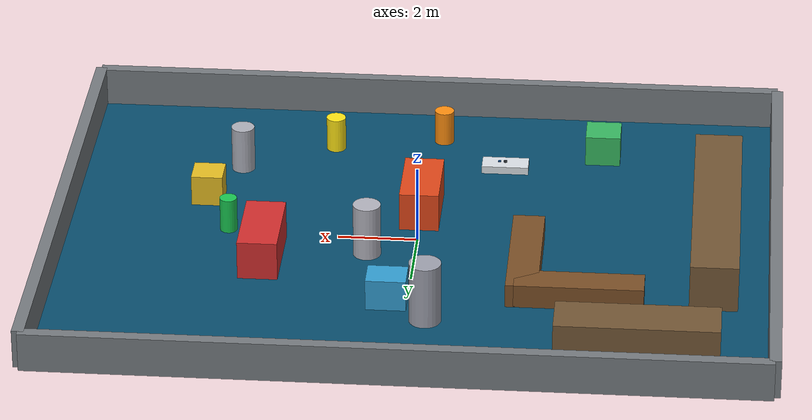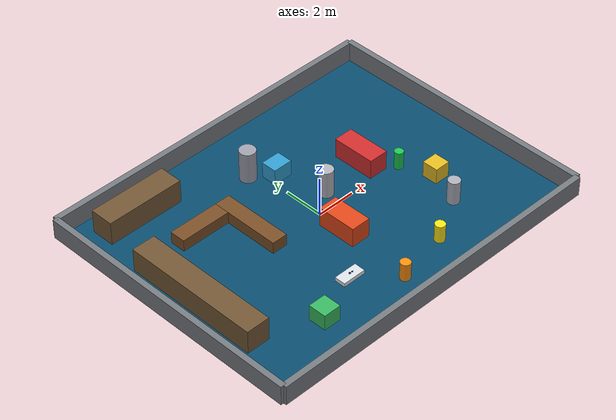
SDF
<?xml version="1.0"?>
<sdf version="1.8">
  <world name="zero_navigation_world">
    <!-- SDF poses and sizes in this world use meters and radians. -->
    <!-- 本 world 内 SDF 位姿和尺寸使用米与弧度。 -->
    <plugin filename="ignition-gazebo-physics-system" name="ignition::gazebo::systems::Physics" />
    <plugin filename="ignition-gazebo-user-commands-system" name="ignition::gazebo::systems::UserCommands" />
    <plugin filename="ignition-gazebo-scene-broadcaster-system" name="ignition::gazebo::systems::SceneBroadcaster" />
    <plugin filename="ignition-gazebo-sensors-system" name="ignition::gazebo::systems::Sensors">
      <render_engine>ogre2</render_engine>
    </plugin>
    <plugin filename="ignition-gazebo-imu-system" name="ignition::gazebo::systems::Imu" />

    <gravity>0 0 -9.81</gravity>
    <magnetic_field>6.0e-6 2.3e-5 -4.2e-5</magnetic_field>
    <atmosphere type="adiabatic" />

    <light name="navigation_sun" type="directional">
      <cast_shadows>true</cast_shadows>
      <pose>0 0 12 0 0 0</pose>
      <diffuse>0.82 0.82 0.78 1</diffuse>
      <specular>0.18 0.18 0.16 1</specular>
      <direction>-0.45 0.20 -0.87</direction>
    </light>

    <model name="water_surface">
      <!-- Bounded water-plane arena used by navigation characterization tests. -->
      <!-- 导航表征测试使用的有限水面场地。 -->
      <static>true</static>
      <pose>0 0 0 0 0 0</pose>
      <link name="water_surface_link">
        <collision name="water_surface_collision">
          <geometry>
            <plane>
              <normal>0 0 1</normal>
              <size>18 14</size>
            </plane>
          </geometry>
        </collision>
        <visual name="water_surface_visual">
          <geometry>
            <plane>
              <normal>0 0 1</normal>
              <size>18 14</size>
            </plane>
          </geometry>
          <material>
            <ambient>0.02 0.16 0.24 1</ambient>
            <diffuse>0.03 0.30 0.43 1</diffuse>
            <specular>0.02 0.05 0.07 1</specular>
          </material>
        </visual>
      </link>
    </model>

    <model name="boundary_west">
      <!-- Static boundaries keep navigation scenarios inside the test arena. -->
      <!-- 静态边界将导航场景限制在测试场地内。 -->
      <static>true</static>
      <pose>-9 0 0.5 0 0 0</pose>
      <link name="boundary_west_link">
        <collision name="boundary_west_collision">
          <geometry><box><size>0.30 14 1.0</size></box></geometry>
        </collision>
        <visual name="boundary_west_visual">
          <geometry><box><size>0.30 14 1.0</size></box></geometry>
          <material>
            <ambient>0.36 0.38 0.40 1</ambient>
            <diffuse>0.46 0.48 0.50 1</diffuse>
          </material>
        </visual>
      </link>
    </model>

    <model name="boundary_east">
      <static>true</static>
      <pose>9 0 0.5 0 0 0</pose>
      <link name="boundary_east_link">
        <collision name="boundary_east_collision">
          <geometry><box><size>0.30 14 1.0</size></box></geometry>
        </collision>
        <visual name="boundary_east_visual">
          <geometry><box><size>0.30 14 1.0</size></box></geometry>
          <material>
            <ambient>0.36 0.38 0.40 1</ambient>
            <diffuse>0.46 0.48 0.50 1</diffuse>
          </material>
        </visual>
      </link>
    </model>

    <model name="boundary_south">
      <static>true</static>
      <pose>0 -7 0.5 0 0 0</pose>
      <link name="boundary_south_link">
        <collision name="boundary_south_collision">
          <geometry><box><size>18 0.30 1.0</size></box></geometry>
        </collision>
        <visual name="boundary_south_visual">
          <geometry><box><size>18 0.30 1.0</size></box></geometry>
          <material>
            <ambient>0.36 0.38 0.40 1</ambient>
            <diffuse>0.46 0.48 0.50 1</diffuse>
          </material>
        </visual>
      </link>
    </model>

    <model name="boundary_north">
      <static>true</static>
      <pose>0 7 0.5 0 0 0</pose>
      <link name="boundary_north_link">
        <collision name="boundary_north_collision">
          <geometry><box><size>18 0.30 1.0</size></box></geometry>
        </collision>
        <visual name="boundary_north_visual">
          <geometry><box><size>18 0.30 1.0</size></box></geometry>
          <material>
            <ambient>0.36 0.38 0.40 1</ambient>
            <diffuse>0.46 0.48 0.50 1</diffuse>
          </material>
        </visual>
      </link>
    </model>

    <model name="shoreline_west_lower">
      <!-- Shoreline blocks create the non-rectangular drivable water area. -->
      <!-- 岸线块用于形成非矩形可航行水域。 -->
      <static>true</static>
      <pose>-7.5 -0.5 0.6 0 0 0</pose>
      <link name="shoreline_west_lower_link">
        <collision name="shoreline_west_lower_collision">
          <geometry><box><size>1.2 7.0 1.2</size></box></geometry>
        </collision>
        <visual name="shoreline_west_lower_visual">
          <geometry><box><size>1.2 7.0 1.2</size></box></geometry>
          <material>
            <ambient>0.33 0.25 0.16 1</ambient>
            <diffuse>0.45 0.34 0.21 1</diffuse>
          </material>
        </visual>
      </link>
    </model>

    <model name="shoreline_northwest">
      <static>true</static>
      <pose>-5.7 5.5 0.6 0 0 0</pose>
      <link name="shoreline_northwest_link">
        <collision name="shoreline_northwest_collision">
          <geometry><box><size>4.0 1.2 1.2</size></box></geometry>
        </collision>
        <visual name="shoreline_northwest_visual">
          <geometry><box><size>4.0 1.2 1.2</size></box></geometry>
          <material>
            <ambient>0.33 0.25 0.16 1</ambient>
            <diffuse>0.45 0.34 0.21 1</diffuse>
          </material>
        </visual>
      </link>
    </model>

    <model name="dock_main">
      <!-- Dock geometry gives navigation tests a fixed near-shore structure. -->
      <!-- 码头几何为导航测试提供固定近岸结构。 -->
      <static>true</static>
      <pose>-4.2 2.8 0.3 0 0 0</pose>
      <link name="dock_main_link">
        <collision name="dock_main_collision">
          <geometry><box><size>3.2 0.8 0.6</size></box></geometry>
        </collision>
        <visual name="dock_main_visual">
          <geometry><box><size>3.2 0.8 0.6</size></box></geometry>
          <material>
            <ambient>0.28 0.18 0.09 1</ambient>
            <diffuse>0.48 0.31 0.15 1</diffuse>
          </material>
        </visual>
      </link>
    </model>

    <model name="dock_finger">
      <static>true</static>
      <pose>-2.8 1.4 0.3 0 0 0</pose>
      <link name="dock_finger_link">
        <collision name="dock_finger_collision">
          <geometry><box><size>0.8 3.6 0.6</size></box></geometry>
        </collision>
        <visual name="dock_finger_visual">
          <geometry><box><size>0.8 3.6 0.6</size></box></geometry>
          <material>
            <ambient>0.28 0.18 0.09 1</ambient>
            <diffuse>0.48 0.31 0.15 1</diffuse>
          </material>
        </visual>
      </link>
    </model>

    <model name="bypass_obstacle_alpha">
      <!-- Bypass obstacles force local avoidance instead of a straight-line route. -->
      <!-- 绕行障碍物迫使局部避障，而不是直线路径。 -->
      <static>true</static>
      <pose>0 -1.5 0.5 0 0 0</pose>
      <link name="bypass_obstacle_alpha_link">
        <collision name="bypass_obstacle_alpha_collision">
          <geometry><box><size>1.0 2.0 1.0</size></box></geometry>
        </collision>
        <visual name="bypass_obstacle_alpha_visual">
          <geometry><box><size>1.0 2.0 1.0</size></box></geometry>
          <material>
            <ambient>0.70 0.20 0.08 1</ambient>
            <diffuse>0.88 0.28 0.10 1</diffuse>
          </material>
        </visual>
      </link>
    </model>

    <model name="bypass_obstacle_beta">
      <static>true</static>
      <pose>3.8 1.2 0.5 0 0 0</pose>
      <link name="bypass_obstacle_beta_link">
        <collision name="bypass_obstacle_beta_collision">
          <geometry><box><size>1.0 2.2 1.0</size></box></geometry>
        </collision>
        <visual name="bypass_obstacle_beta_visual">
          <geometry><box><size>1.0 2.2 1.0</size></box></geometry>
          <material>
            <ambient>0.63 0.12 0.12 1</ambient>
            <diffuse>0.82 0.18 0.18 1</diffuse>
          </material>
        </visual>
      </link>
    </model>

    <model name="box_east">
      <!-- Colored boxes provide simple LiDAR-visible navigation landmarks. -->
      <!-- 彩色方块提供可被 LiDAR 观测的简易导航地标。 -->
      <static>true</static>
      <pose>5.5 -1.8 0.4 0 0 0</pose>
      <link name="box_east_link">
        <collision name="box_east_collision">
          <geometry><box><size>0.8 0.8 0.8</size></box></geometry>
        </collision>
        <visual name="box_east_visual">
          <geometry><box><size>0.8 0.8 0.8</size></box></geometry>
          <material>
            <ambient>0.72 0.58 0.10 1</ambient>
            <diffuse>0.90 0.74 0.14 1</diffuse>
          </material>
        </visual>
      </link>
    </model>

    <model name="box_north">
      <static>true</static>
      <pose>0.5 3.2 0.4 0 0 0</pose>
      <link name="box_north_link">
        <collision name="box_north_collision">
          <geometry><box><size>1.0 0.8 0.8</size></box></geometry>
        </collision>
        <visual name="box_north_visual">
          <geometry><box><size>1.0 0.8 0.8</size></box></geometry>
          <material>
            <ambient>0.16 0.48 0.66 1</ambient>
            <diffuse>0.20 0.62 0.82 1</diffuse>
          </material>
        </visual>
      </link>
    </model>

    <model name="box_southwest">
      <static>true</static>
      <pose>-4.5 -4.8 0.4 0 0 0</pose>
      <link name="box_southwest_link">
        <collision name="box_southwest_collision">
          <geometry><box><size>0.9 0.9 0.8</size></box></geometry>
        </collision>
        <visual name="box_southwest_visual">
          <geometry><box><size>0.9 0.9 0.8</size></box></geometry>
          <material>
            <ambient>0.18 0.58 0.30 1</ambient>
            <diffuse>0.22 0.72 0.38 1</diffuse>
          </material>
        </visual>
      </link>
    </model>

    <model name="column_center">
      <!-- Cylindrical columns diversify obstacle shapes beyond boxes. -->
      <!-- 圆柱障碍物用于补充方块之外的障碍形状。 -->
      <static>true</static>
      <pose>1.2 0.8 0.7 0 0 0</pose>
      <link name="column_center_link">
        <collision name="column_center_collision">
          <geometry>
            <cylinder><radius>0.35</radius><length>1.4</length></cylinder>
          </geometry>
        </collision>
        <visual name="column_center_visual">
          <geometry>
            <cylinder><radius>0.35</radius><length>1.4</length></cylinder>
          </geometry>
          <material>
            <ambient>0.55 0.55 0.58 1</ambient>
            <diffuse>0.70 0.70 0.74 1</diffuse>
          </material>
        </visual>
      </link>
    </model>

    <model name="column_north">
      <static>true</static>
      <pose>-0.5 4.0 0.8 0 0 0</pose>
      <link name="column_north_link">
        <collision name="column_north_collision">
          <geometry>
            <cylinder><radius>0.4</radius><length>1.6</length></cylinder>
          </geometry>
        </collision>
        <visual name="column_north_visual">
          <geometry>
            <cylinder><radius>0.4</radius><length>1.6</length></cylinder>
          </geometry>
          <material>
            <ambient>0.45 0.46 0.50 1</ambient>
            <diffuse>0.62 0.63 0.68 1</diffuse>
          </material>
        </visual>
      </link>
    </model>

    <model name="column_east">
      <static>true</static>
      <pose>4.8 -3.5 0.6 0 0 0</pose>
      <link name="column_east_link">
        <collision name="column_east_collision">
          <geometry>
            <cylinder><radius>0.3</radius><length>1.2</length></cylinder>
          </geometry>
        </collision>
        <visual name="column_east_visual">
          <geometry>
            <cylinder><radius>0.3</radius><length>1.2</length></cylinder>
          </geometry>
          <material>
            <ambient>0.50 0.51 0.54 1</ambient>
            <diffuse>0.68 0.69 0.73 1</diffuse>
          </material>
        </visual>
      </link>
    </model>

    <model name="buoy_amber">
      <!-- Buoys mark small round targets inside the navigation arena. -->
      <!-- 浮标标记导航场地内的小型圆形目标。 -->
      <static>true</static>
      <pose>-0.3 -5.4 0.45 0 0 0</pose>
      <link name="buoy_amber_link">
        <collision name="buoy_amber_collision">
          <geometry>
            <cylinder><radius>0.25</radius><length>0.9</length></cylinder>
          </geometry>
        </collision>
        <visual name="buoy_amber_visual">
          <geometry>
            <cylinder><radius>0.25</radius><length>0.9</length></cylinder>
          </geometry>
          <material>
            <ambient>0.82 0.42 0.04 1</ambient>
            <diffuse>1.0 0.56 0.06 1</diffuse>
          </material>
        </visual>
      </link>
    </model>

    <model name="buoy_yellow">
      <static>true</static>
      <pose>2.5 -4.8 0.45 0 0 0</pose>
      <link name="buoy_yellow_link">
        <collision name="buoy_yellow_collision">
          <geometry>
            <cylinder><radius>0.25</radius><length>0.9</length></cylinder>
          </geometry>
        </collision>
        <visual name="buoy_yellow_visual">
          <geometry>
            <cylinder><radius>0.25</radius><length>0.9</length></cylinder>
          </geometry>
          <material>
            <ambient>0.82 0.72 0.05 1</ambient>
            <diffuse>1.0 0.90 0.08 1</diffuse>
          </material>
        </visual>
      </link>
    </model>

    <model name="buoy_green">
      <static>true</static>
      <pose>4.8 -0.2 0.45 0 0 0</pose>
      <link name="buoy_green_link">
        <collision name="buoy_green_collision">
          <geometry>
            <cylinder><radius>0.22</radius><length>0.9</length></cylinder>
          </geometry>
        </collision>
        <visual name="buoy_green_visual">
          <geometry>
            <cylinder><radius>0.22</radius><length>0.9</length></cylinder>
          </geometry>
          <material>
            <ambient>0.08 0.58 0.24 1</ambient>
            <diffuse>0.10 0.78 0.32 1</diffuse>
          </material>
        </visual>
      </link>
    </model>

    <include>
      <!-- Spawn the packaged Zero USV model with sensors and DiffDrive plugin. -->
      <!-- 生成带传感器和 DiffDrive 插件的本包 Zero USV 模型。 -->
      <uri>model://zero_usv</uri>
      <name>zero_usv</name>
      <pose>-2.0 -3.8 0.18 0 0 0</pose>
    </include>
  </world>
</sdf>

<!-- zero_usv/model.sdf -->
<sdf version="1.8">
  <model name="zero_usv">
    <pose>0 0 0 0 0 0</pose>
    <static>false</static>

    <link name="zero_base_link">
      <inertial>
        <mass>12.0</mass>
        <inertia>
          <ixx>0.82</ixx>
          <ixy>0</ixy>
          <ixz>0</ixz>
          <iyy>1.46</iyy>
          <iyz>0</iyz>
          <izz>2.10</izz>
        </inertia>
      </inertial>
      <collision name="hull_collision">
        <geometry>
          <box>
            <size>1.20 0.55 0.20</size>
          </box>
        </geometry>
      </collision>
      <visual name="hull_visual">
        <geometry>
          <box>
            <size>1.20 0.55 0.20</size>
          </box>
        </geometry>
        <material>
          <ambient>0.86 0.88 0.90 1</ambient>
          <diffuse>0.86 0.88 0.90 1</diffuse>
        </material>
      </visual>
    </link>

    <link name="lidar_link">
      <pose relative_to="zero_base_link">-0.00015 -0.00040397 0.1277 0 0 0</pose>
      <inertial>
        <mass>0.08</mass>
        <inertia>
          <ixx>0.00006</ixx>
          <ixy>0</ixy>
          <ixz>0</ixz>
          <iyy>0.00006</iyy>
          <iyz>0</iyz>
          <izz>0.00008</izz>
        </inertia>
      </inertial>
      <collision name="lidar_collision">
        <geometry>
          <cylinder>
            <radius>0.045</radius>
            <length>0.04</length>
          </cylinder>
        </geometry>
      </collision>
      <visual name="lidar_visual">
        <geometry>
          <cylinder>
            <radius>0.045</radius>
            <length>0.04</length>
          </cylinder>
        </geometry>
        <material>
          <ambient>0.12 0.14 0.16 1</ambient>
          <diffuse>0.12 0.14 0.16 1</diffuse>
        </material>
      </visual>
      <sensor name="zero_lidar" type="gpu_lidar">
        <topic>/scan</topic>
        <gz_frame_id>laser_frame</gz_frame_id>
        <!-- Approximate the real YDLIDAR X2: 360 deg, 0.10-8.0 m, 4-8 Hz, 3K samples/s. -->
        <!-- 近似真实 YDLIDAR X2：360 度、0.10-8.0 m、4-8 Hz、3K samples/s。 -->
        <update_rate>6</update_rate>
        <always_on>true</always_on>
        <visualize>true</visualize>
        <ray>
          <scan>
            <horizontal>
              <samples>500</samples>
              <resolution>1</resolution>
              <min_angle>-3.14159</min_angle>
              <max_angle>3.14159</max_angle>
            </horizontal>
          </scan>
          <range>
            <min>0.10</min>
            <max>8.0</max>
            <resolution>0.01</resolution>
          </range>
          <noise>
            <type>gaussian</type>
            <mean>0.0</mean>
            <stddev>0.01</stddev>
          </noise>
        </ray>
      </sensor>
    </link>

    <link name="imu_link">
      <pose relative_to="zero_base_link">0.15 0 0.13 0 0 0</pose>
      <inertial>
        <mass>0.05</mass>
        <inertia>
          <ixx>0.00002</ixx>
          <ixy>0</ixy>
          <ixz>0</ixz>
          <iyy>0.00002</iyy>
          <iyz>0</iyz>
          <izz>0.00002</izz>
        </inertia>
      </inertial>
      <collision name="imu_collision">
        <geometry>
          <box>
            <size>0.07 0.05 0.03</size>
          </box>
        </geometry>
      </collision>
      <visual name="imu_visual">
        <geometry>
          <box>
            <size>0.07 0.05 0.03</size>
          </box>
        </geometry>
        <material>
          <ambient>0.08 0.30 0.55 1</ambient>
          <diffuse>0.08 0.30 0.55 1</diffuse>
        </material>
      </visual>
      <sensor name="zero_imu" type="imu">
        <topic>/imu</topic>
        <gz_frame_id>imu_link</gz_frame_id>
        <update_rate>100</update_rate>
        <always_on>true</always_on>
      </sensor>
    </link>

    <link name="left_virtual_wheel_link">
      <!-- Virtual wheel links exist only to drive Gazebo DiffDrive for the USV hull. -->
      <!-- 虚拟轮 link 仅用于驱动 USV 船体的 Gazebo DiffDrive。 -->
      <pose relative_to="zero_base_link">0 0.2035 -0.13 0 0 0</pose>
      <inertial>
        <mass>0.02</mass>
        <inertia>
          <ixx>0.000013166666667</ixx>
          <ixy>0</ixy>
          <ixz>0</ixz>
          <iyy>0.000025</iyy>
          <iyz>0</iyz>
          <izz>0.000013166666667</izz>
        </inertia>
      </inertial>
      <collision name="left_virtual_wheel_collision">
        <pose>0 0 0 1.57079632679 0 0</pose>
        <geometry>
          <cylinder>
            <radius>0.05</radius>
            <length>0.02</length>
          </cylinder>
        </geometry>
      </collision>
    </link>

    <link name="right_virtual_wheel_link">
      <pose relative_to="zero_base_link">0 -0.2035 -0.13 0 0 0</pose>
      <inertial>
        <mass>0.02</mass>
        <inertia>
          <ixx>0.000013166666667</ixx>
          <ixy>0</ixy>
          <ixz>0</ixz>
          <iyy>0.000025</iyy>
          <iyz>0</iyz>
          <izz>0.000013166666667</izz>
        </inertia>
      </inertial>
      <collision name="right_virtual_wheel_collision">
        <pose>0 0 0 1.57079632679 0 0</pose>
        <geometry>
          <cylinder>
            <radius>0.05</radius>
            <length>0.02</length>
          </cylinder>
        </geometry>
      </collision>
    </link>

    <joint name="left_virtual_wheel_joint" type="revolute">
      <parent>zero_base_link</parent>
      <child>left_virtual_wheel_link</child>
      <axis>
        <xyz>0 1 0</xyz>
      </axis>
    </joint>

    <joint name="right_virtual_wheel_joint" type="revolute">
      <parent>zero_base_link</parent>
      <child>right_virtual_wheel_link</child>
      <axis>
        <xyz>0 1 0</xyz>
      </axis>
    </joint>

    <joint name="zero_lidar_fixed_joint" type="fixed">
      <parent>zero_base_link</parent>
      <child>lidar_link</child>
    </joint>
    <frame name="laser_frame" attached_to="lidar_link">
      <pose>0 0 0 0 0 0</pose>
    </frame>
    <joint name="zero_imu_fixed_joint" type="fixed">
      <parent>zero_base_link</parent>
      <child>imu_link</child>
    </joint>

    <plugin filename="libignition-gazebo-diff-drive-system.so" name="ignition::gazebo::systems::DiffDrive">
      <!-- Topic, odometry, and limits mirror the ROS bridge and adapter contracts. -->
      <!-- topic、里程计和限幅与 ROS 桥接及适配器契约保持一致。 -->
      <left_joint>left_virtual_wheel_joint</left_joint>
      <right_joint>right_virtual_wheel_joint</right_joint>
      <wheel_separation>0.407</wheel_separation>
      <wheel_radius>0.05</wheel_radius>
      <odom_publish_frequency>50</odom_publish_frequency>
      <topic>/model/zero_usv/cmd_vel</topic>
      <odom_topic>/model/zero_usv/odometry</odom_topic>
      <tf_topic>/model/zero_usv/diff_drive_tf_unbridged</tf_topic>
      <frame_id>odom</frame_id>
      <child_frame_id>zero_base_link</child_frame_id>
      <min_linear_velocity>-1.0</min_linear_velocity>
      <max_linear_velocity>1.0</max_linear_velocity>
      <min_angular_velocity>-1.0</min_angular_velocity>
      <max_angular_velocity>1.0</max_angular_velocity>
      <min_linear_acceleration>-1.0</min_linear_acceleration>
      <max_linear_acceleration>1.0</max_linear_acceleration>
      <min_angular_acceleration>-1.0</min_angular_acceleration>
      <max_angular_acceleration>1.0</max_angular_acceleration>
    </plugin>
  </model>
</sdf>
